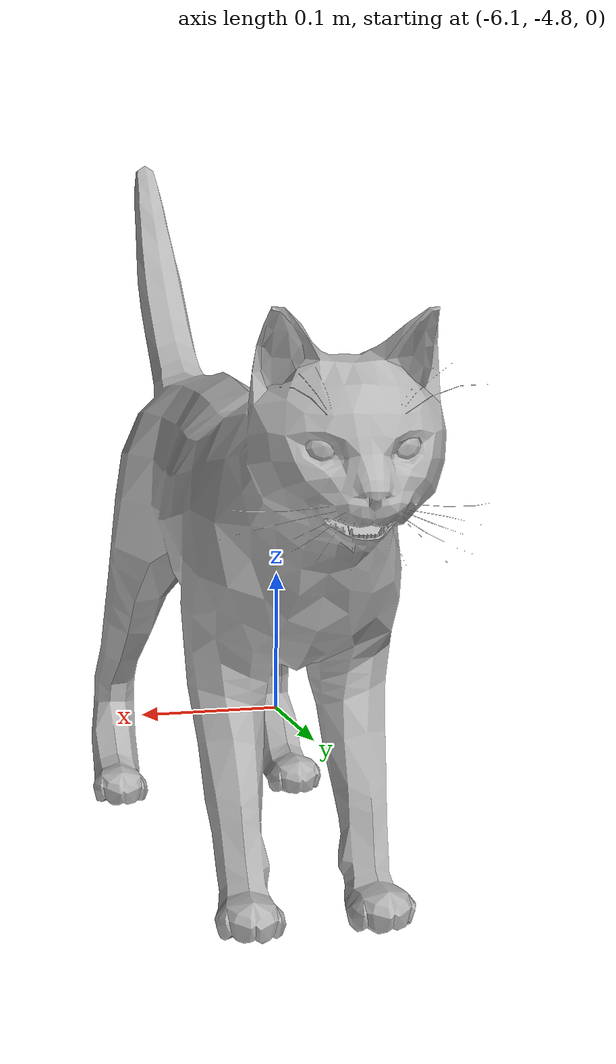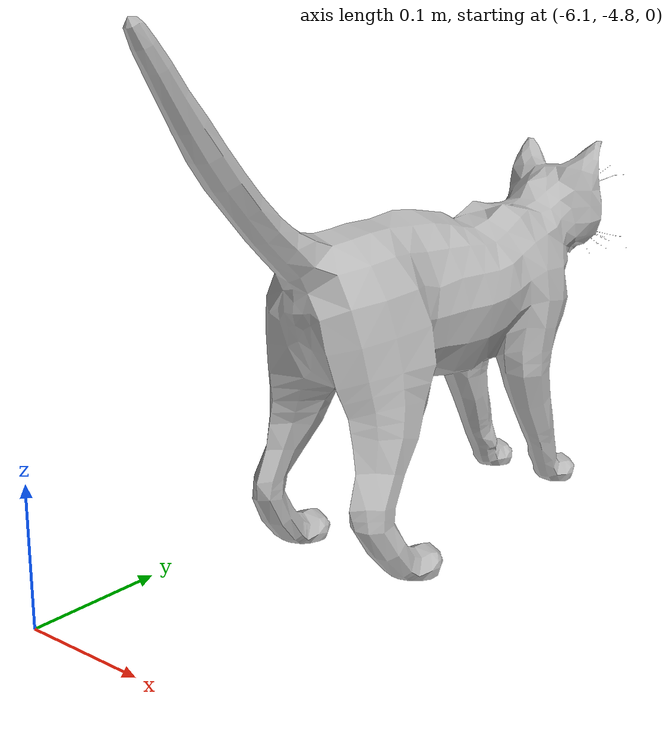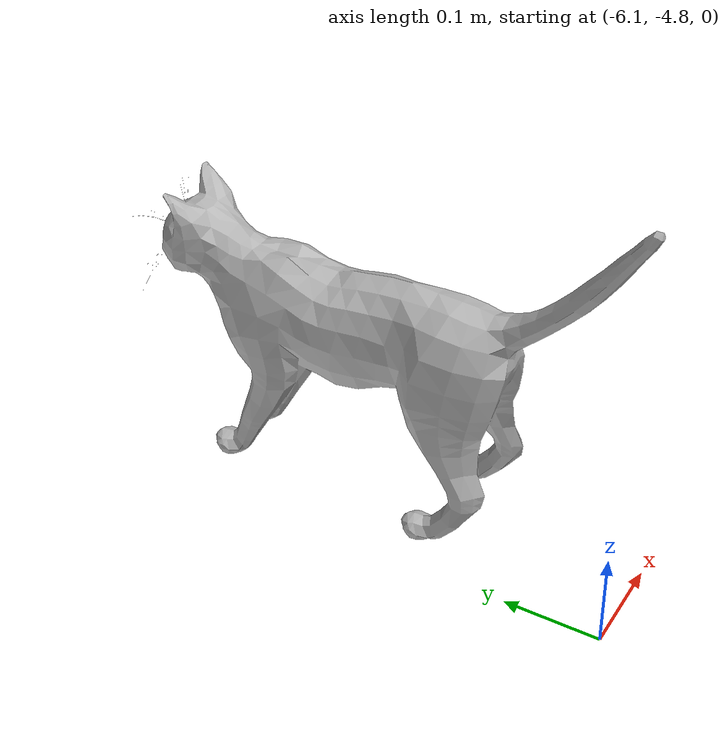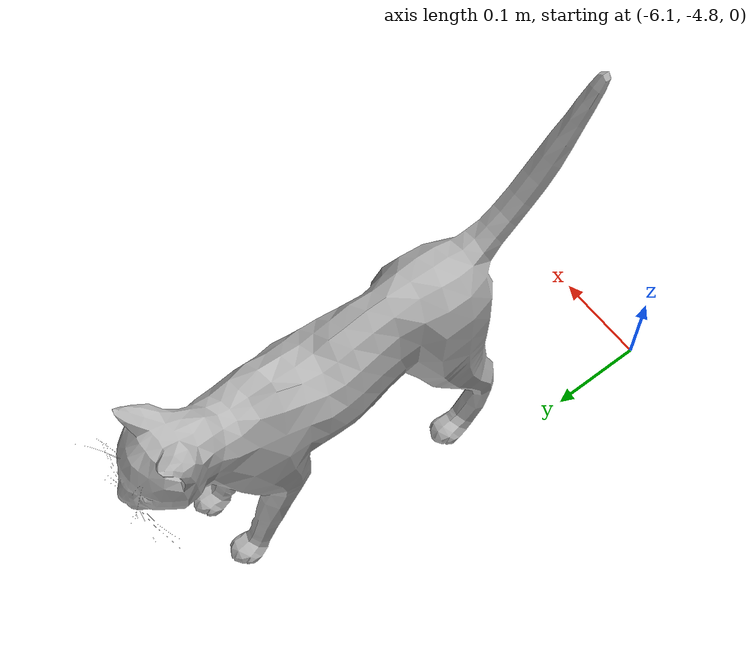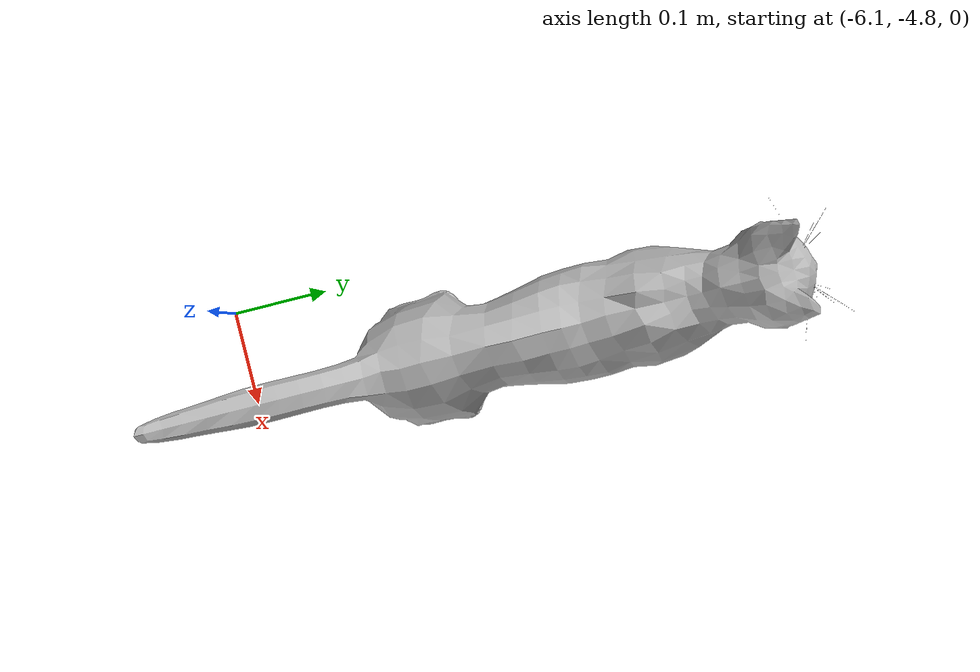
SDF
<?xml version="1.0" ?>
<!-- |    This document was autogenerated by xacro from /tmp/tmpa34ayrrt.xacro         | -->
<!-- |    EDITING THIS FILE BY HAND IS NOT RECOMMENDED                                 | -->
<sdf version="1.7">
  <model name="cat_goal_3_1">
    <static>1</static>
    <pose>-6.0 -4.5 0.0 0.0 0.0 1.5708</pose>
    <link name="link">
      <visual name="visual">
        <geometry>
          <mesh>
            <uri>file:///home/vlad/project/src/tank_robot/meshes/cat_3/model.dae</uri>
            <scale>0.4 0.4 0.4</scale>
          </mesh>
        </geometry>
      </visual>
      <collision name="collision">
        <pose>0 0 0.21040000000000003</pose>
        <geometry>
          <box>
            <size>0.20400000000000001 0.05488 0.21040000000000003</size>
          </box>
        </geometry>
      </collision>
    </link>
  </model>
</sdf>
